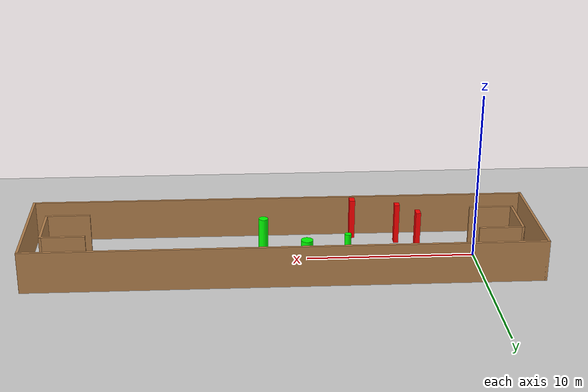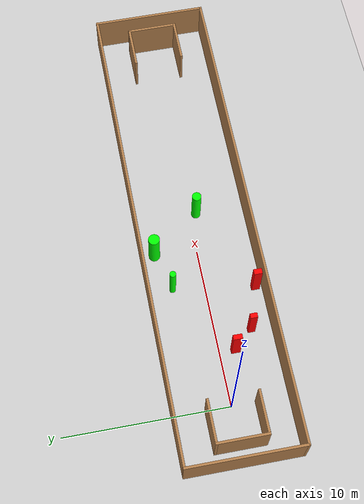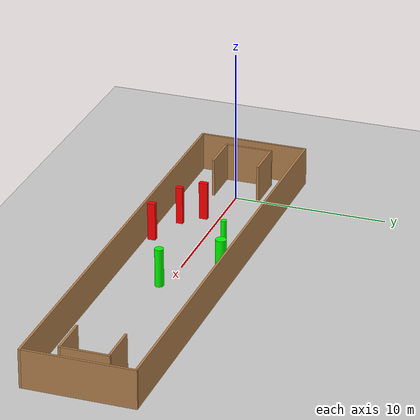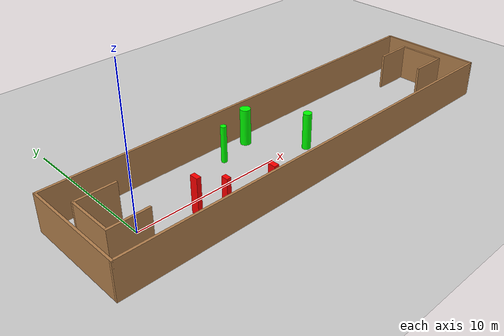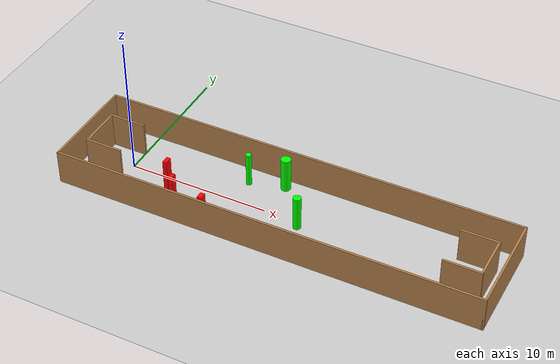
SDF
<sdf version="1.7">
 <world name="default">
  <light name="sun" type="directional">
   <pose>0 0 10 0 -0 0</pose>
   <diffuse>0.8 0.8 0.8 1</diffuse>
   <specular>0.2 0.2 0.2 1</specular>
   <attenuation>
    <range>1000</range>
    <constant>0.9</constant>
    <linear>0.01</linear>
    <quadratic>0.001</quadratic>
   </attenuation>
   <direction>-0.5 0.1 -0.9</direction>
   <spot><inner_angle>0</inner_angle><outer_angle>0</outer_angle><falloff>0</falloff></spot>
  </light>
  <model name="ground_plane">
   <static>1</static>
   <link name="link">
    <collision name="collision">
     <geometry><plane><normal>0 0 1</normal><size>100 100</size></plane></geometry>
     <surface>
      <contact><collide_bitmask>65535</collide_bitmask></contact>
      <friction><ode><mu>100</mu><mu2>50</mu2></ode></friction>
     </surface>
    </collision>
    <visual name="visual">
     <cast_shadows>0</cast_shadows>
     <geometry><plane><normal>0 0 1</normal><size>100 100</size></plane></geometry>
     <material>
      <script><uri>file://media/materials/scripts/gazebo.material</uri><name>Gazebo/Grey</name></script>
     </material>
    </visual>
   </link>
  </model>
  <gravity>0 0 -9.8</gravity>
  <magnetic_field>6e-06 2.3e-05 -4.2e-05</magnetic_field>
  <atmosphere type="adiabatic"/>
  <physics type="ode">
   <max_step_size>0.001</max_step_size>
   <real_time_factor>1</real_time_factor>
   <real_time_update_rate>1000</real_time_update_rate>
  </physics>
  <scene><ambient>0.4 0.4 0.4 1</ambient><background>0.7 0.7 0.7 1</background><shadows>1</shadows></scene>
  <spherical_coordinates>
   <surface_model>EARTH_WGS84</surface_model>
   <latitude_deg>0</latitude_deg>
   <longitude_deg>0</longitude_deg>
   <elevation>0</elevation>
   <heading_deg>0</heading_deg>
  </spherical_coordinates>
  <model name="my_base_walls">
   <link name="Wall_0">
    <collision name="Wall_0_Collision">
     <geometry><box><size>7.15 0.15 2.5</size></box></geometry>
     <pose>0 0 1.25 0 -0 0</pose>
    </collision>
    <visual name="Wall_0_Visual">
     <pose>0 0 1.25 0 -0 0</pose>
     <geometry><box><size>7.15 0.15 2.5</size></box></geometry>
     <material>
      <script><uri>file://media/materials/scripts/gazebo.material</uri><name>Gazebo/Wood</name></script>
      <ambient>1 1 1 1</ambient>
     </material>
     <meta><layer>0</layer></meta>
    </visual>
    <pose>-15 0 0 0 -0 1.5708</pose>
   </link>
   <link name="Wall_10">
    <collision name="Wall_10_Collision">
     <geometry><box><size>2.65 0.15 2.5</size></box></geometry>
     <pose>0 0 1.25 0 -0 0</pose>
    </collision>
    <visual name="Wall_10_Visual">
     <pose>0 0 1.25 0 -0 0</pose>
     <geometry><box><size>2.65 0.15 2.5</size></box></geometry>
     <material>
      <script><uri>file://media/materials/scripts/gazebo.material</uri><name>Gazebo/Wood</name></script>
      <ambient>1 1 1 1</ambient>
     </material>
     <meta><layer>0</layer></meta>
    </visual>
    <pose>-12.75 -1.5 0 0 -0 0</pose>
   </link>
   <link name="Wall_12">
    <collision name="Wall_12_Collision">
     <geometry><box><size>2.65 0.15 2.5</size></box></geometry>
     <pose>0 0 1.25 0 -0 0</pose>
    </collision>
    <visual name="Wall_12_Visual">
     <pose>0 0 1.25 0 -0 0</pose>
     <geometry><box><size>2.65 0.15 2.5</size></box></geometry>
     <material>
      <script><uri>file://media/materials/scripts/gazebo.material</uri><name>Gazebo/Wood</name></script>
      <ambient>1 1 1 1</ambient>
     </material>
     <meta><layer>0</layer></meta>
    </visual>
    <pose>-12.75 1.5 0 0 -0 0</pose>
   </link>
   <link name="Wall_14">
    <collision name="Wall_14_Collision">
     <geometry><box><size>3.15 0.15 2.5</size></box></geometry>
     <pose>0 0 1.25 0 -0 0</pose>
    </collision>
    <visual name="Wall_14_Visual">
     <pose>0 0 1.25 0 -0 0</pose>
     <geometry><box><size>3.15 0.15 2.5</size></box></geometry>
     <material>
      <script><uri>file://media/materials/scripts/gazebo.material</uri><name>Gazebo/Wood</name></script>
      <ambient>1 1 1 1</ambient>
     </material>
     <meta><layer>0</layer></meta>
    </visual>
    <pose>14 0 0 0 -0 -1.5708</pose>
   </link>
   <link name="Wall_15">
    <collision name="Wall_15_Collision">
     <geometry><box><size>2.65 0.15 2.5</size></box></geometry>
     <pose>0 0 1.25 0 -0 0</pose>
    </collision>
    <visual name="Wall_15_Visual">
     <pose>0 0 1.25 0 -0 0</pose>
     <geometry><box><size>2.65 0.15 2.5</size></box></geometry>
     <material>
      <script><uri>file://media/materials/scripts/gazebo.material</uri><name>Gazebo/Wood</name></script>
      <ambient>1 1 1 1</ambient>
     </material>
     <meta><layer>0</layer></meta>
    </visual>
    <pose>12.75 -1.5 0 0 -0 3.14159</pose>
   </link>
   <link name="Wall_17">
    <collision name="Wall_17_Collision">
     <geometry><box><size>2.65 0.15 2.5</size></box></geometry>
     <pose>0 0 1.25 0 -0 0</pose>
    </collision>
    <visual name="Wall_17_Visual">
     <pose>0 0 1.25 0 -0 0</pose>
     <geometry><box><size>2.65 0.15 2.5</size></box></geometry>
     <material>
      <script><uri>file://media/materials/scripts/gazebo.material</uri><name>Gazebo/Wood</name></script>
      <ambient>1 1 1 1</ambient>
     </material>
     <meta><layer>0</layer></meta>
    </visual>
    <pose>12.75 1.5 0 0 -0 3.14159</pose>
   </link>
   <link name="Wall_2">
    <collision name="Wall_2_Collision">
     <geometry><box><size>30.15 0.15 2.5</size></box></geometry>
     <pose>0 0 1.25 0 -0 0</pose>
    </collision>
    <visual name="Wall_2_Visual">
     <pose>0 0 1.25 0 -0 0</pose>
     <geometry><box><size>30.15 0.15 2.5</size></box></geometry>
     <material>
      <script><uri>file://media/materials/scripts/gazebo.material</uri><name>Gazebo/Wood</name></script>
      <ambient>1 1 1 1</ambient>
     </material>
     <meta><layer>0</layer></meta>
    </visual>
    <pose>-0 -3.5 0 0 -0 0</pose>
   </link>
   <link name="Wall_4">
    <collision name="Wall_4_Collision">
     <geometry><box><size>30.15 0.15 2.5</size></box></geometry>
     <pose>0 0 1.25 0 -0 0</pose>
    </collision>
    <visual name="Wall_4_Visual">
     <pose>0 0 1.25 0 -0 0</pose>
     <geometry><box><size>30.15 0.15 2.5</size></box></geometry>
     <material>
      <script><uri>file://media/materials/scripts/gazebo.material</uri><name>Gazebo/Wood</name></script>
      <ambient>1 1 1 1</ambient>
     </material>
     <meta><layer>0</layer></meta>
    </visual>
    <pose>-0 3.5 0 0 -0 0</pose>
   </link>
   <link name="Wall_6">
    <collision name="Wall_6_Collision">
     <geometry><box><size>7.15 0.15 2.5</size></box></geometry>
     <pose>0 0 1.25 0 -0 0</pose>
    </collision>
    <visual name="Wall_6_Visual">
     <pose>0 0 1.25 0 -0 0</pose>
     <geometry><box><size>7.15 0.15 2.5</size></box></geometry>
     <material>
      <script><uri>file://media/materials/scripts/gazebo.material</uri><name>Gazebo/Wood</name></script>
      <ambient>1 1 1 1</ambient>
     </material>
     <meta><layer>0</layer></meta>
    </visual>
    <pose>15 0 0 0 -0 -1.5708</pose>
   </link>
   <link name="Wall_9">
    <collision name="Wall_9_Collision">
     <geometry><box><size>3.15 0.15 2.5</size></box></geometry>
     <pose>0 0 1.25 0 -0 0</pose>
    </collision>
    <visual name="Wall_9_Visual">
     <pose>0 0 1.25 0 -0 0</pose>
     <geometry><box><size>3.15 0.15 2.5</size></box></geometry>
     <material>
      <script><uri>file://media/materials/scripts/gazebo.material</uri><name>Gazebo/Wood</name></script>
      <ambient>1 1 1 1</ambient>
     </material>
     <meta><layer>0</layer></meta>
    </visual>
    <pose>-14 0 0 0 -0 -1.5708</pose>
   </link>
   <static>1</static>
   <pose>11.5 0 0 0 -0 0</pose>
  </model>
  <model name="cylinder1">
   <static>1</static>
   <link name="link">
    <inertial>
     <mass>1</mass>
     <inertia><ixx>0.5</ixx><ixy>0</ixy><ixz>0</ixz><iyy>0.5</iyy><iyz>0</iyz><izz>1</izz></inertia>
    </inertial>
    <collision name="collision">
     <geometry><cylinder><radius>0.19299482252736255</radius><length>2.5</length></cylinder></geometry>
    </collision>
    <visual name="visual">
     <geometry><cylinder><radius>0.19299482252736255</radius><length>2.5</length></cylinder></geometry>
     <material>
      <ambient>0 1 0 1</ambient>
      <diffuse>0 1 0 1</diffuse>
      <specular>0.1 0.1 0.1 1</specular>
      <emissive>0 0 0 0</emissive>
     </material>
    </visual>
   </link>
   <pose>7.822309319641613 1.965403729514148 1.25 0 0 0</pose>
  </model>
  <model name="cylinder2">
   <static>1</static>
   <link name="link">
    <inertial>
     <mass>1</mass>
     <inertia><ixx>0.5</ixx><ixy>0</ixy><ixz>0</ixz><iyy>0.5</iyy><iyz>0</iyz><izz>1</izz></inertia>
    </inertial>
    <collision name="collision">
     <geometry><cylinder><radius>0.2820787524586093</radius><length>2.5</length></cylinder></geometry>
    </collision>
    <visual name="visual">
     <geometry><cylinder><radius>0.2820787524586093</radius><length>2.5</length></cylinder></geometry>
     <material>
      <ambient>0 1 0 1</ambient>
      <diffuse>0 1 0 1</diffuse>
      <specular>0.1 0.1 0.1 1</specular>
      <emissive>0 0 0 0</emissive>
     </material>
    </visual>
   </link>
   <pose>12.612070538934967 -0.44419659534333533 1.25 0 0 0</pose>
  </model>
  <model name="cylinder3">
   <static>1</static>
   <link name="link">
    <inertial>
     <mass>1</mass>
     <inertia><ixx>0.5</ixx><ixy>0</ixy><ixz>0</ixz><iyy>0.5</iyy><iyz>0</iyz><izz>1</izz></inertia>
    </inertial>
    <collision name="collision">
     <geometry><cylinder><radius>0.34547723786443396</radius><length>2.5</length></cylinder></geometry>
    </collision>
    <visual name="visual">
     <geometry><cylinder><radius>0.34547723786443396</radius><length>2.5</length></cylinder></geometry>
     <material>
      <ambient>0 1 0 1</ambient>
      <diffuse>0 1 0 1</diffuse>
      <specular>0.1 0.1 0.1 1</specular>
      <emissive>0 0 0 0</emissive>
     </material>
    </visual>
   </link>
   <pose>10.240675686817866 2.6550957010275447 1.25 0 0 0</pose>
  </model>
  <model name="box1">
   <static>1</static>
   <link name="link">
    <inertial>
     <mass>1</mass>
     <inertia><ixx>0.083</ixx><ixy>0</ixy><ixz>0</ixz><iyy>0.083</iyy><iyz>0</iyz><izz>0.083</izz></inertia>
    </inertial>
    <collision name="collision">
     <geometry><box><size>0.3338559935158553 0.4997621625523713 2.5</size></box></geometry>
    </collision>
    <visual name="visual">
     <geometry><box><size>0.3338559935158553 0.4997621625523713 2.5</size></box></geometry>
     <material>
      <ambient>1 0 0 1</ambient>
      <diffuse>1 0 0 1</diffuse>
      <specular>0.1 0.1 0.1 1</specular>
      <emissive>0 0 0 0</emissive>
     </material>
    </visual>
    <sensor name="my_contact" type="contact">
     <contact><collision>box_collision</collision><topic>__default_topic__</topic></contact>
    </sensor>
   </link>
   <pose>7.062528409763251 -3.0238050444201527 1.25 0 0 0</pose>
  </model>
  <model name="box2">
   <static>1</static>
   <link name="link">
    <inertial>
     <mass>1</mass>
     <inertia><ixx>0.083</ixx><ixy>0</ixy><ixz>0</ixz><iyy>0.083</iyy><iyz>0</iyz><izz>0.083</izz></inertia>
    </inertial>
    <collision name="collision">
     <geometry><box><size>0.2973419938709657 0.5492208100477614 2.5</size></box></geometry>
    </collision>
    <visual name="visual">
     <geometry><box><size>0.2973419938709657 0.5492208100477614 2.5</size></box></geometry>
     <material>
      <ambient>1 0 0 1</ambient>
      <diffuse>1 0 0 1</diffuse>
      <specular>0.1 0.1 0.1 1</specular>
      <emissive>0 0 0 0</emissive>
     </material>
    </visual>
    <sensor name="my_contact" type="contact">
     <contact><collision>box_collision</collision><topic>__default_topic__</topic></contact>
    </sensor>
   </link>
   <pose>3.303790098251092 -0.9737827331474191 1.25 0 0 0</pose>
  </model>
  <model name="box3">
   <static>1</static>
   <link name="link">
    <inertial>
     <mass>1</mass>
     <inertia><ixx>0.083</ixx><ixy>0</ixy><ixz>0</ixz><iyy>0.083</iyy><iyz>0</iyz><izz>0.083</izz></inertia>
    </inertial>
    <collision name="collision">
     <geometry><box><size>0.29200827263075124 0.435913597032066 2.5</size></box></geometry>
    </collision>
    <visual name="visual">
     <geometry><box><size>0.29200827263075124 0.435913597032066 2.5</size></box></geometry>
     <material>
      <ambient>1 0 0 1</ambient>
      <diffuse>1 0 0 1</diffuse>
      <specular>0.1 0.1 0.1 1</specular>
      <emissive>0 0 0 0</emissive>
     </material>
    </visual>
    <sensor name="my_contact" type="contact">
     <contact><collision>box_collision</collision><topic>__default_topic__</topic></contact>
    </sensor>
   </link>
   <pose>4.4063198499172564 -2.171050991710716 1.25 0 0 0</pose>
  </model>
 </world>
</sdf>
